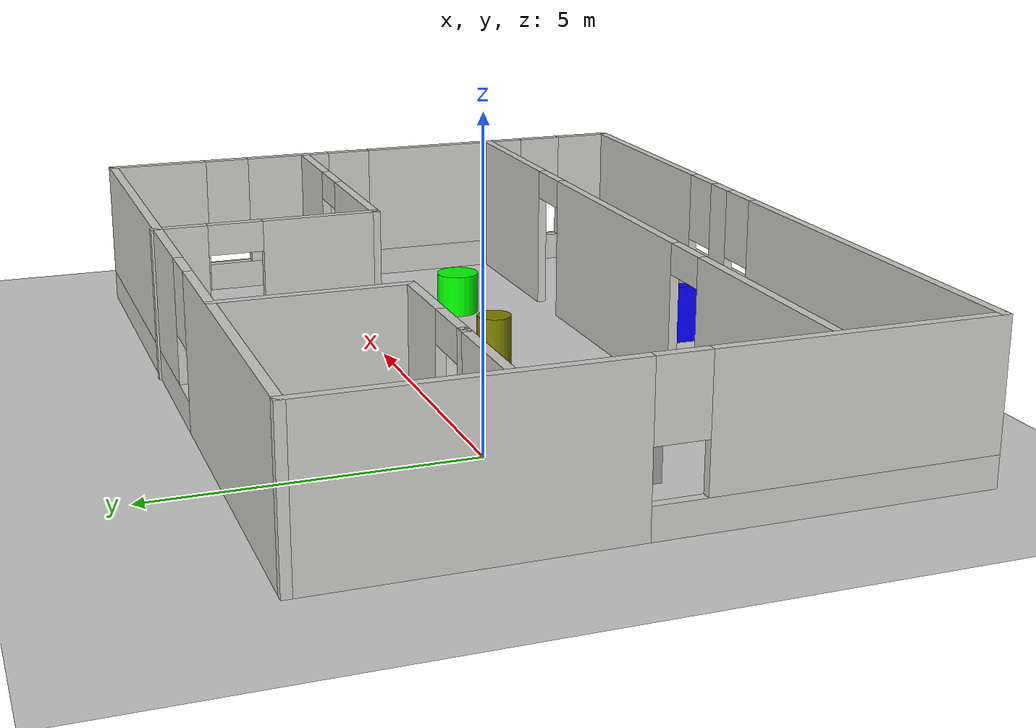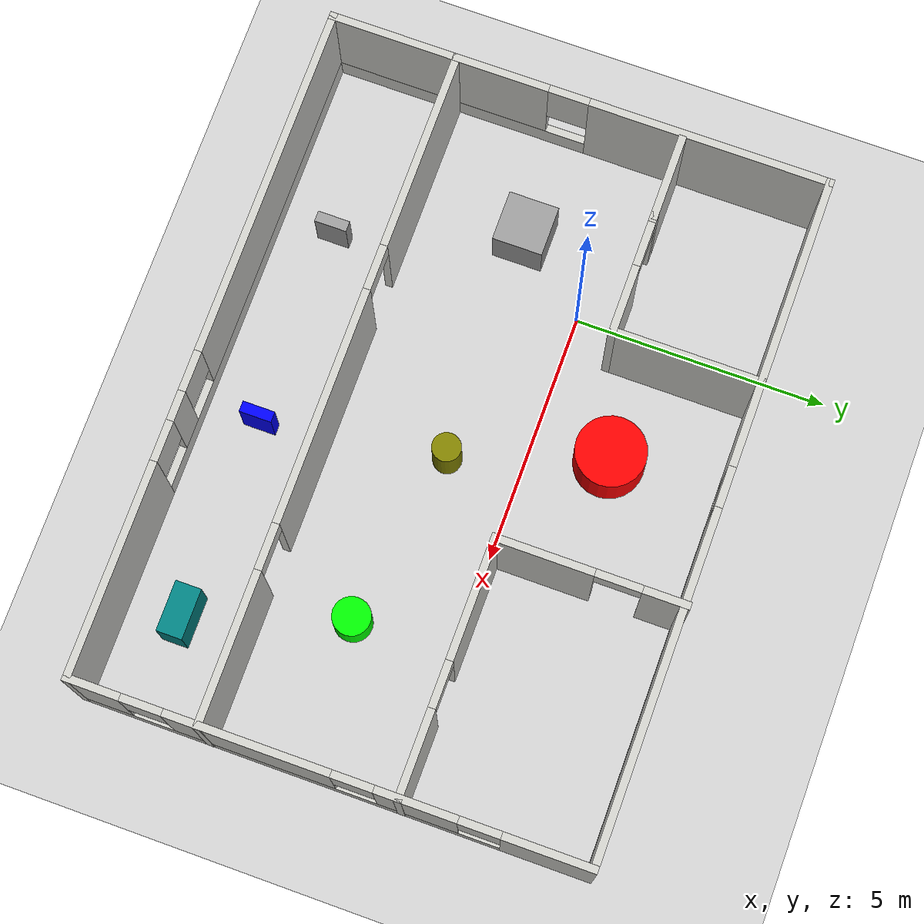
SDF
<sdf version="1.5">
 <world name="default">
  <light name="sun" type="directional">
   <pose>0 0 10 0 -0 0</pose>
   <diffuse>0.8 0.8 0.8 1</diffuse>
   <specular>0.2 0.2 0.2 1</specular>
   <attenuation>
    <range>1000</range>
    <constant>0.9</constant>
    <linear>0.01</linear>
    <quadratic>0.001</quadratic>
   </attenuation>
   <direction>-0.5 0.1 -0.9</direction>
  </light>
  <model name="ground_plane">
   <static>1</static>
   <link name="link">
    <collision name="collision">
     <geometry><plane><normal>0 0 1</normal><size>100 100</size></plane></geometry>
     <surface><friction><ode><mu>100</mu><mu2>50</mu2></ode></friction></surface>
    </collision>
    <visual name="visual">
     <cast_shadows>0</cast_shadows>
     <geometry><plane><normal>0 0 1</normal><size>100 100</size></plane></geometry>
     <material>
      <script><uri>file://media/materials/scripts/gazebo.material</uri><name>Gazebo/Grey</name></script>
     </material>
    </visual>
   </link>
  </model>
  <physics name="default_physics" default="0" type="ode">
   <max_step_size>0.001</max_step_size>
   <real_time_factor>1</real_time_factor>
   <real_time_update_rate>1000</real_time_update_rate>
   <gravity>0 0 -9.8</gravity>
   <magnetic_field>5.5645e-06 2.28758e-05 -4.23884e-05</magnetic_field>
  </physics>
  <scene><ambient>0.4 0.4 0.4 1</ambient><background>0.7 0.7 0.7 1</background><shadows>1</shadows></scene>
  <spherical_coordinates>
   <surface_model>EARTH_WGS84</surface_model>
   <latitude_deg>0</latitude_deg>
   <longitude_deg>0</longitude_deg>
   <elevation>0</elevation>
   <heading_deg>0</heading_deg>
  </spherical_coordinates>
  <model name="mr_simul">
   <pose>3.30411 -1.20956 0 0 -0 0</pose>
   <link name="Wall_0">
    <pose>-6.67729 -0.018087 0 0 0 -1.5708</pose>
    <visual name="Wall_0_Visual_0">
     <pose>-2.60269 0 1.25 0 -0 0</pose>
     <geometry><box><size>4.79462 0.15 2.5</size></box></geometry>
     <material>
      <script><uri>file://media/materials/scripts/gazebo.material</uri><name>Gazebo/CeilingTiled</name></script>
      <ambient>1 1 1 1</ambient>
     </material>
    </visual>
    <collision name="Wall_0_Collision_0">
     <geometry><box><size>4.79462 0.15 2.5</size></box></geometry>
     <pose>-2.60269 0 1.25 0 -0 0</pose>
    </collision>
    <visual name="Wall_0_Visual_1">
     <pose>2.39731 0 0.25 0 -0 0</pose>
     <geometry><box><size>5.20538 0.15 0.5</size></box></geometry>
     <material>
      <script><uri>file://media/materials/scripts/gazebo.material</uri><name>Gazebo/CeilingTiled</name></script>
      <ambient>1 1 1 1</ambient>
     </material>
    </visual>
    <collision name="Wall_0_Collision_1">
     <geometry><box><size>5.20538 0.15 0.5</size></box></geometry>
     <pose>2.39731 0 0.25 0 -0 0</pose>
    </collision>
    <visual name="Wall_0_Visual_2">
     <pose>2.79731 0 1.5 0 -0 0</pose>
     <geometry><box><size>4.40538 0.15 2</size></box></geometry>
     <material>
      <script><uri>file://media/materials/scripts/gazebo.material</uri><name>Gazebo/CeilingTiled</name></script>
      <ambient>1 1 1 1</ambient>
     </material>
    </visual>
    <collision name="Wall_0_Collision_2">
     <geometry><box><size>4.40538 0.15 2</size></box></geometry>
     <pose>2.79731 0 1.5 0 -0 0</pose>
    </collision>
    <visual name="Wall_0_Visual_3">
     <pose>0.19462 0 1.9 0 -0 0</pose>
     <geometry><box><size>0.8 0.15 1.2</size></box></geometry>
     <material>
      <script><uri>file://media/materials/scripts/gazebo.material</uri><name>Gazebo/CeilingTiled</name></script>
      <ambient>1 1 1 1</ambient>
     </material>
    </visual>
    <collision name="Wall_0_Collision_3">
     <geometry><box><size>0.8 0.15 1.2</size></box></geometry>
     <pose>0.19462 0 1.9 0 -0 0</pose>
    </collision>
   </link>
   <link name="Wall_12">
    <pose>1.74518 3.14309 0 0 0 -1.5708</pose>
    <visual name="Wall_12_Visual_0">
     <pose>-1.42397 0 1.25 0 -0 0</pose>
     <geometry><box><size>0.902054 0.15 2.5</size></box></geometry>
     <material>
      <script><uri>file://media/materials/scripts/gazebo.material</uri><name>Gazebo/CeilingTiled</name></script>
      <ambient>1 1 1 1</ambient>
     </material>
    </visual>
    <collision name="Wall_12_Collision_0">
     <geometry><box><size>0.902054 0.15 2.5</size></box></geometry>
     <pose>-1.42397 0 1.25 0 -0 0</pose>
    </collision>
    <visual name="Wall_12_Visual_1">
     <pose>0.901027 0 1.25 0 -0 0</pose>
     <geometry><box><size>1.94795 0.15 2.5</size></box></geometry>
     <material>
      <script><uri>file://media/materials/scripts/gazebo.material</uri><name>Gazebo/CeilingTiled</name></script>
      <ambient>1 1 1 1</ambient>
     </material>
    </visual>
    <collision name="Wall_12_Collision_1">
     <geometry><box><size>1.94795 0.15 2.5</size></box></geometry>
     <pose>0.901027 0 1.25 0 -0 0</pose>
    </collision>
    <visual name="Wall_12_Visual_2">
     <pose>-0.522946 0 2.25 0 -0 0</pose>
     <geometry><box><size>0.9 0.15 0.5</size></box></geometry>
     <material>
      <script><uri>file://media/materials/scripts/gazebo.material</uri><name>Gazebo/CeilingTiled</name></script>
      <ambient>1 1 1 1</ambient>
     </material>
    </visual>
    <collision name="Wall_12_Collision_2">
     <geometry><box><size>0.9 0.15 0.5</size></box></geometry>
     <pose>-0.522946 0 2.25 0 -0 0</pose>
    </collision>
   </link>
   <link name="Wall_14">
    <pose>4.20975 1.30681 0 0 -0 3.13631</pose>
    <visual name="Wall_14_Visual_0">
     <pose>-1.66628 0 1.25 0 -0 0</pose>
     <geometry><box><size>1.74713 0.15 2.5</size></box></geometry>
     <material>
      <script><uri>file://media/materials/scripts/gazebo.material</uri><name>Gazebo/CeilingTiled</name></script>
      <ambient>1 1 1 1</ambient>
     </material>
    </visual>
    <collision name="Wall_14_Collision_0">
     <geometry><box><size>1.74713 0.15 2.5</size></box></geometry>
     <pose>-1.66628 0 1.25 0 -0 0</pose>
    </collision>
    <visual name="Wall_14_Visual_1">
     <pose>1.32356 0 1.25 0 -0 0</pose>
     <geometry><box><size>2.43255 0.15 2.5</size></box></geometry>
     <material>
      <script><uri>file://media/materials/scripts/gazebo.material</uri><name>Gazebo/CeilingTiled</name></script>
      <ambient>1 1 1 1</ambient>
     </material>
    </visual>
    <collision name="Wall_14_Collision_1">
     <geometry><box><size>2.43255 0.15 2.5</size></box></geometry>
     <pose>1.32356 0 1.25 0 -0 0</pose>
    </collision>
    <visual name="Wall_14_Visual_2">
     <pose>-0.342713 0 2.25 0 -0 0</pose>
     <geometry><box><size>0.9 0.15 0.5</size></box></geometry>
     <material>
      <script><uri>file://media/materials/scripts/gazebo.material</uri><name>Gazebo/CeilingTiled</name></script>
      <ambient>1 1 1 1</ambient>
     </material>
    </visual>
    <collision name="Wall_14_Collision_2">
     <geometry><box><size>0.9 0.15 0.5</size></box></geometry>
     <pose>-0.342713 0 2.25 0 -0 0</pose>
    </collision>
   </link>
   <link name="Wall_16">
    <pose>0.002293 -2.45981 0 0 -0 0</pose>
    <visual name="Wall_16_Visual_0">
     <pose>-4.7439 0 1.25 0 -0 0</pose>
     <geometry><box><size>4.0122 0.15 2.5</size></box></geometry>
     <material>
      <script><uri>file://media/materials/scripts/gazebo.material</uri><name>Gazebo/CeilingTiled</name></script>
      <ambient>1 1 1 1</ambient>
     </material>
    </visual>
    <collision name="Wall_16_Collision_0">
     <geometry><box><size>4.0122 0.15 2.5</size></box></geometry>
     <pose>-4.7439 0 1.25 0 -0 0</pose>
    </collision>
    <visual name="Wall_16_Visual_1">
     <pose>0.494335 0 1.25 0 -0 0</pose>
     <geometry><box><size>4.66426 0.15 2.5</size></box></geometry>
     <material>
      <script><uri>file://media/materials/scripts/gazebo.material</uri><name>Gazebo/CeilingTiled</name></script>
      <ambient>1 1 1 1</ambient>
     </material>
    </visual>
    <collision name="Wall_16_Collision_1">
     <geometry><box><size>4.66426 0.15 2.5</size></box></geometry>
     <pose>0.494335 0 1.25 0 -0 0</pose>
    </collision>
    <visual name="Wall_16_Visual_2">
     <pose>5.23823 0 1.25 0 -0 0</pose>
     <geometry><box><size>3.02353 0.15 2.5</size></box></geometry>
     <material>
      <script><uri>file://media/materials/scripts/gazebo.material</uri><name>Gazebo/CeilingTiled</name></script>
      <ambient>1 1 1 1</ambient>
     </material>
    </visual>
    <collision name="Wall_16_Collision_2">
     <geometry><box><size>3.02353 0.15 2.5</size></box></geometry>
     <pose>5.23823 0 1.25 0 -0 0</pose>
    </collision>
    <visual name="Wall_16_Visual_3">
     <pose>-2.2878 0 2.25 0 -0 0</pose>
     <geometry><box><size>0.9 0.15 0.5</size></box></geometry>
     <material>
      <script><uri>file://media/materials/scripts/gazebo.material</uri><name>Gazebo/CeilingTiled</name></script>
      <ambient>1 1 1 1</ambient>
     </material>
    </visual>
    <collision name="Wall_16_Collision_3">
     <geometry><box><size>0.9 0.15 0.5</size></box></geometry>
     <pose>-2.2878 0 2.25 0 -0 0</pose>
    </collision>
    <visual name="Wall_16_Visual_4">
     <pose>3.27646 0 2.25 0 -0 0</pose>
     <geometry><box><size>0.9 0.15 0.5</size></box></geometry>
     <material>
      <script><uri>file://media/materials/scripts/gazebo.material</uri><name>Gazebo/CeilingTiled</name></script>
      <ambient>1 1 1 1</ambient>
     </material>
    </visual>
    <collision name="Wall_16_Collision_4">
     <geometry><box><size>0.9 0.15 0.5</size></box></geometry>
     <pose>3.27646 0 2.25 0 -0 0</pose>
    </collision>
   </link>
   <link name="Wall_18">
    <collision name="Wall_18_Collision">
     <geometry><box><size>1.75 0.15 2.5</size></box></geometry>
     <pose>0 0 1.25 0 -0 0</pose>
    </collision>
    <visual name="Wall_18_Visual">
     <pose>0 0 1.25 0 -0 0</pose>
     <geometry><box><size>1.75 0.15 2.5</size></box></geometry>
     <material>
      <script><uri>file://media/materials/scripts/gazebo.material</uri><name>Gazebo/CeilingTiled</name></script>
      <ambient>1 1 1 1</ambient>
     </material>
    </visual>
    <pose>-5.75654 2.04702 0 0 -0 3.14159</pose>
   </link>
   <link name="Wall_2">
    <pose>-0.002292 4.90691 0 0 -0 0</pose>
    <visual name="Wall_2_Visual_0">
     <pose>-3.83717 0 1.25 0 -0 0</pose>
     <geometry><box><size>5.82566 0.15 2.5</size></box></geometry>
     <material>
      <script><uri>file://media/materials/scripts/gazebo.material</uri><name>Gazebo/CeilingTiled</name></script>
      <ambient>1 1 1 1</ambient>
     </material>
    </visual>
    <collision name="Wall_2_Collision_0">
     <geometry><box><size>5.82566 0.15 2.5</size></box></geometry>
     <pose>-3.83717 0 1.25 0 -0 0</pose>
    </collision>
    <visual name="Wall_2_Visual_1">
     <pose>2.91283 0 0.25 0 -0 0</pose>
     <geometry><box><size>7.67434 0.15 0.5</size></box></geometry>
     <material>
      <script><uri>file://media/materials/scripts/gazebo.material</uri><name>Gazebo/CeilingTiled</name></script>
      <ambient>1 1 1 1</ambient>
     </material>
    </visual>
    <collision name="Wall_2_Collision_1">
     <geometry><box><size>7.67434 0.15 0.5</size></box></geometry>
     <pose>2.91283 0 0.25 0 -0 0</pose>
    </collision>
    <visual name="Wall_2_Visual_2">
     <pose>3.31283 0 1.5 0 -0 0</pose>
     <geometry><box><size>6.87434 0.15 2</size></box></geometry>
     <material>
      <script><uri>file://media/materials/scripts/gazebo.material</uri><name>Gazebo/CeilingTiled</name></script>
      <ambient>1 1 1 1</ambient>
     </material>
    </visual>
    <collision name="Wall_2_Collision_2">
     <geometry><box><size>6.87434 0.15 2</size></box></geometry>
     <pose>3.31283 0 1.5 0 -0 0</pose>
    </collision>
    <visual name="Wall_2_Visual_3">
     <pose>-0.524345 0 1.9 0 -0 0</pose>
     <geometry><box><size>0.8 0.15 1.2</size></box></geometry>
     <material>
      <script><uri>file://media/materials/scripts/gazebo.material</uri><name>Gazebo/CeilingTiled</name></script>
      <ambient>1 1 1 1</ambient>
     </material>
    </visual>
    <collision name="Wall_2_Collision_3">
     <geometry><box><size>0.8 0.15 1.2</size></box></geometry>
     <pose>-0.524345 0 1.9 0 -0 0</pose>
    </collision>
   </link>
   <link name="Wall_3">
    <pose>6.67271 -0.018087 0 0 0 -1.5708</pose>
    <visual name="Wall_3_Visual_0">
     <pose>-4.11122 0 1.25 0 -0 0</pose>
     <geometry><box><size>1.77755 0.15 2.5</size></box></geometry>
     <material>
      <script><uri>file://media/materials/scripts/gazebo.material</uri><name>Gazebo/CeilingTiled</name></script>
      <ambient>1 1 1 1</ambient>
     </material>
    </visual>
    <collision name="Wall_3_Collision_0">
     <geometry><box><size>1.77755 0.15 2.5</size></box></geometry>
     <pose>-4.11122 0 1.25 0 -0 0</pose>
    </collision>
    <visual name="Wall_3_Visual_1">
     <pose>0.888778 0 0.25 0 -0 0</pose>
     <geometry><box><size>8.22245 0.15 0.5</size></box></geometry>
     <material>
      <script><uri>file://media/materials/scripts/gazebo.material</uri><name>Gazebo/CeilingTiled</name></script>
      <ambient>1 1 1 1</ambient>
     </material>
    </visual>
    <collision name="Wall_3_Collision_1">
     <geometry><box><size>8.22245 0.15 0.5</size></box></geometry>
     <pose>0.888778 0 0.25 0 -0 0</pose>
    </collision>
    <visual name="Wall_3_Visual_2">
     <pose>-1.63726 0 1.5 0 -0 0</pose>
     <geometry><box><size>1.57036 0.15 2</size></box></geometry>
     <material>
      <script><uri>file://media/materials/scripts/gazebo.material</uri><name>Gazebo/CeilingTiled</name></script>
      <ambient>1 1 1 1</ambient>
     </material>
    </visual>
    <collision name="Wall_3_Collision_2">
     <geometry><box><size>1.57036 0.15 2</size></box></geometry>
     <pose>-1.63726 0 1.5 0 -0 0</pose>
    </collision>
    <visual name="Wall_3_Visual_3">
     <pose>1.52985 0 1.5 0 -0 0</pose>
     <geometry><box><size>3.16386 0.15 2</size></box></geometry>
     <material>
      <script><uri>file://media/materials/scripts/gazebo.material</uri><name>Gazebo/CeilingTiled</name></script>
      <ambient>1 1 1 1</ambient>
     </material>
    </visual>
    <collision name="Wall_3_Collision_3">
     <geometry><box><size>3.16386 0.15 2</size></box></geometry>
     <pose>1.52985 0 1.5 0 -0 0</pose>
    </collision>
    <visual name="Wall_3_Visual_4">
     <pose>4.45589 0 1.5 0 -0 0</pose>
     <geometry><box><size>1.08822 0.15 2</size></box></geometry>
     <material>
      <script><uri>file://media/materials/scripts/gazebo.material</uri><name>Gazebo/CeilingTiled</name></script>
      <ambient>1 1 1 1</ambient>
     </material>
    </visual>
    <collision name="Wall_3_Collision_4">
     <geometry><box><size>1.08822 0.15 2</size></box></geometry>
     <pose>4.45589 0 1.5 0 -0 0</pose>
    </collision>
    <visual name="Wall_3_Visual_5">
     <pose>-2.82245 0 1.9 0 -0 0</pose>
     <geometry><box><size>0.8 0.15 1.2</size></box></geometry>
     <material>
      <script><uri>file://media/materials/scripts/gazebo.material</uri><name>Gazebo/CeilingTiled</name></script>
      <ambient>1 1 1 1</ambient>
     </material>
    </visual>
    <collision name="Wall_3_Collision_5">
     <geometry><box><size>0.8 0.15 1.2</size></box></geometry>
     <pose>-2.82245 0 1.9 0 -0 0</pose>
    </collision>
    <visual name="Wall_3_Visual_6">
     <pose>-0.452083 0 1.9 0 -0 0</pose>
     <geometry><box><size>0.8 0.15 1.2</size></box></geometry>
     <material>
      <script><uri>file://media/materials/scripts/gazebo.material</uri><name>Gazebo/CeilingTiled</name></script>
      <ambient>1 1 1 1</ambient>
     </material>
    </visual>
    <collision name="Wall_3_Collision_6">
     <geometry><box><size>0.8 0.15 1.2</size></box></geometry>
     <pose>-0.452083 0 1.9 0 -0 0</pose>
    </collision>
    <visual name="Wall_3_Visual_7">
     <pose>3.51178 0 1.9 0 -0 0</pose>
     <geometry><box><size>0.8 0.15 1.2</size></box></geometry>
     <material>
      <script><uri>file://media/materials/scripts/gazebo.material</uri><name>Gazebo/CeilingTiled</name></script>
      <ambient>1 1 1 1</ambient>
     </material>
    </visual>
    <collision name="Wall_3_Collision_7">
     <geometry><box><size>0.8 0.15 1.2</size></box></geometry>
     <pose>3.51178 0 1.9 0 -0 0</pose>
    </collision>
   </link>
   <link name="Wall_4">
    <pose>-0.002292 -4.94309 0 0 -0 3.14159</pose>
    <visual name="Wall_4_Visual_0">
     <pose>-4.627 0 1.25 0 -0 0</pose>
     <geometry><box><size>4.24601 0.15 2.5</size></box></geometry>
     <material>
      <script><uri>file://media/materials/scripts/gazebo.material</uri><name>Gazebo/CeilingTiled</name></script>
      <ambient>1 1 1 1</ambient>
     </material>
    </visual>
    <collision name="Wall_4_Collision_0">
     <geometry><box><size>4.24601 0.15 2.5</size></box></geometry>
     <pose>-4.627 0 1.25 0 -0 0</pose>
    </collision>
    <visual name="Wall_4_Visual_1">
     <pose>2.123 0 0.25 0 -0 0</pose>
     <geometry><box><size>9.25399 0.15 0.5</size></box></geometry>
     <material>
      <script><uri>file://media/materials/scripts/gazebo.material</uri><name>Gazebo/CeilingTiled</name></script>
      <ambient>1 1 1 1</ambient>
     </material>
    </visual>
    <collision name="Wall_4_Collision_1">
     <geometry><box><size>9.25399 0.15 0.5</size></box></geometry>
     <pose>2.123 0 0.25 0 -0 0</pose>
    </collision>
    <visual name="Wall_4_Visual_2">
     <pose>-1.40846 0 1.5 0 -0 0</pose>
     <geometry><box><size>0.591065 0.15 2</size></box></geometry>
     <material>
      <script><uri>file://media/materials/scripts/gazebo.material</uri><name>Gazebo/CeilingTiled</name></script>
      <ambient>1 1 1 1</ambient>
     </material>
    </visual>
    <collision name="Wall_4_Collision_2">
     <geometry><box><size>0.591065 0.15 2</size></box></geometry>
     <pose>-1.40846 0 1.5 0 -0 0</pose>
    </collision>
    <visual name="Wall_4_Visual_3">
     <pose>3.21854 0 1.5 0 -0 0</pose>
     <geometry><box><size>7.06293 0.15 2</size></box></geometry>
     <material>
      <script><uri>file://media/materials/scripts/gazebo.material</uri><name>Gazebo/CeilingTiled</name></script>
      <ambient>1 1 1 1</ambient>
     </material>
    </visual>
    <collision name="Wall_4_Collision_3">
     <geometry><box><size>7.06293 0.15 2</size></box></geometry>
     <pose>3.21854 0 1.5 0 -0 0</pose>
    </collision>
    <visual name="Wall_4_Visual_4">
     <pose>-2.10399 0 1.9 0 -0 0</pose>
     <geometry><box><size>0.8 0.15 1.2</size></box></geometry>
     <material>
      <script><uri>file://media/materials/scripts/gazebo.material</uri><name>Gazebo/CeilingTiled</name></script>
      <ambient>1 1 1 1</ambient>
     </material>
    </visual>
    <collision name="Wall_4_Collision_4">
     <geometry><box><size>0.8 0.15 1.2</size></box></geometry>
     <pose>-2.10399 0 1.9 0 -0 0</pose>
    </collision>
    <visual name="Wall_4_Visual_5">
     <pose>-0.712929 0 1.9 0 -0 0</pose>
     <geometry><box><size>0.8 0.15 1.2</size></box></geometry>
     <material>
      <script><uri>file://media/materials/scripts/gazebo.material</uri><name>Gazebo/CeilingTiled</name></script>
      <ambient>1 1 1 1</ambient>
     </material>
    </visual>
    <collision name="Wall_4_Collision_5">
     <geometry><box><size>0.8 0.15 1.2</size></box></geometry>
     <pose>-0.712929 0 1.9 0 -0 0</pose>
    </collision>
   </link>
   <link name="Wall_6">
    <collision name="Wall_6_Collision">
     <geometry><box><size>3 0.15 2.5</size></box></geometry>
     <pose>0 0 1.25 0 -0 0</pose>
    </collision>
    <visual name="Wall_6_Visual">
     <pose>0 0 1.25 0 -0 0</pose>
     <geometry><box><size>3 0.15 2.5</size></box></geometry>
     <material>
      <script><uri>file://media/materials/scripts/gazebo.material</uri><name>Gazebo/CeilingTiled</name></script>
      <ambient>1 1 1 1</ambient>
     </material>
    </visual>
    <pose>-2.60654 3.47202 0 0 0 -1.5708</pose>
   </link>
   <link name="Wall_7">
    <pose>-3.78154 2.04702 0 0 -0 3.14159</pose>
    <visual name="Wall_7_Visual_0">
     <pose>-0.549322 0 1.25 0 -0 0</pose>
     <geometry><box><size>1.40136 0.15 2.5</size></box></geometry>
     <material>
      <script><uri>file://media/materials/scripts/gazebo.material</uri><name>Gazebo/CeilingTiled</name></script>
      <ambient>1 1 1 1</ambient>
     </material>
    </visual>
    <collision name="Wall_7_Collision_0">
     <geometry><box><size>1.40136 0.15 2.5</size></box></geometry>
     <pose>-0.549322 0 1.25 0 -0 0</pose>
    </collision>
    <visual name="Wall_7_Visual_1">
     <pose>1.15068 0 1.25 0 -0 0</pose>
     <geometry><box><size>0.198644 0.15 2.5</size></box></geometry>
     <material>
      <script><uri>file://media/materials/scripts/gazebo.material</uri><name>Gazebo/CeilingTiled</name></script>
      <ambient>1 1 1 1</ambient>
     </material>
    </visual>
    <collision name="Wall_7_Collision_1">
     <geometry><box><size>0.198644 0.15 2.5</size></box></geometry>
     <pose>1.15068 0 1.25 0 -0 0</pose>
    </collision>
    <visual name="Wall_7_Visual_2">
     <pose>0.601356 0 2.25 0 -0 0</pose>
     <geometry><box><size>0.9 0.15 0.5</size></box></geometry>
     <material>
      <script><uri>file://media/materials/scripts/gazebo.material</uri><name>Gazebo/CeilingTiled</name></script>
      <ambient>1 1 1 1</ambient>
     </material>
    </visual>
    <collision name="Wall_7_Collision_2">
     <geometry><box><size>0.9 0.15 0.5</size></box></geometry>
     <pose>0.601356 0 2.25 0 -0 0</pose>
    </collision>
   </link>
   <static>1</static>
  </model>
  <model name="unit_box_1">
   <pose>-1.2131 -1.5 0.5 0 -0 0</pose>
   <static>true</static>
   <link name="link">
    <inertial>
     <mass>1</mass>
     <inertia><ixx>1</ixx><ixy>0</ixy><ixz>0</ixz><iyy>1</iyy><iyz>0</iyz><izz>1</izz></inertia>
    </inertial>
    <collision name="collision"><geometry><box><size>1 1 1</size></box></geometry></collision>
    <visual name="visual">
     <geometry><box><size>1 1 1</size></box></geometry>
     <material>
      <script><uri>file://media/materials/scripts/gazebo.material</uri><name>Gazebo/Grey</name></script>
     </material>
    </visual>
   </link>
  </model>
  <model name="unit_cylinder_2">
   <pose>2.47995 1.50144 0.499992 -1e-06 0 0</pose>
   <static>true</static>
   <link name="link">
    <inertial>
     <mass>1</mass>
     <inertia><ixx>1</ixx><ixy>0</ixy><ixz>0</ixz><iyy>1</iyy><iyz>0</iyz><izz>1</izz></inertia>
    </inertial>
    <collision name="collision">
     <geometry><cylinder><radius>0.689963</radius><length>1</length></cylinder></geometry>
    </collision>
    <visual name="visual">
     <geometry><cylinder><radius>0.689963</radius><length>1</length></cylinder></geometry>
     <material>
      <script><uri>file://media/materials/scripts/gazebo.material</uri><name>Gazebo/Grey</name></script>
      <ambient>1 0 0 1</ambient>
      <diffuse>1 0 0 1</diffuse>
      <specular>0.1 0.1 0.1 1</specular>
      <emissive>0 0 0 0</emissive>
     </material>
    </visual>
   </link>
  </model>
  <model name="unit_cylinder_3">
   <pose>3.44399 -1.41862 0.499999 -0 -0 -0</pose>
   <static>true</static>
   <link name="link">
    <inertial>
     <mass>1</mass>
     <inertia><ixx>1</ixx><ixy>0</ixy><ixz>0</ixz><iyy>1</iyy><iyz>0</iyz><izz>1</izz></inertia>
    </inertial>
    <collision name="collision">
     <geometry><cylinder><radius>0.284308</radius><length>1</length></cylinder></geometry>
    </collision>
    <visual name="visual">
     <geometry><cylinder><radius>0.284308</radius><length>1</length></cylinder></geometry>
     <material>
      <script><uri>file://media/materials/scripts/gazebo.material</uri><name>Gazebo/Grey</name></script>
      <ambient>0.5 0.5 0 1</ambient>
      <diffuse>0.5 0.5 0 1</diffuse>
      <specular>0.1 0.1 0.1 1</specular>
      <emissive>0 0 0 0</emissive>
     </material>
    </visual>
   </link>
  </model>
  <model name="unit_cylinder_4">
   <pose>7 -2 0.364936 0 -0 0</pose>
   <static>true</static>
   <link name="link">
    <inertial>
     <mass>1</mass>
     <inertia><ixx>1</ixx><ixy>0</ixy><ixz>0</ixz><iyy>1</iyy><iyz>0</iyz><izz>1</izz></inertia>
    </inertial>
    <collision name="collision">
     <geometry><cylinder><radius>0.373984</radius><length>0.72989</length></cylinder></geometry>
    </collision>
    <visual name="visual">
     <geometry><cylinder><radius>0.373984</radius><length>0.72989</length></cylinder></geometry>
     <material>
      <script><uri>file://media/materials/scripts/gazebo.material</uri><name>Gazebo/Grey</name></script>
      <ambient>0 1 0 1</ambient>
      <diffuse>0 1 0 1</diffuse>
      <specular>0.1 0.1 0.1 1</specular>
      <emissive>0 0 0 0</emissive>
     </material>
    </visual>
   </link>
  </model>
  <model name="unit_box_2">
   <pose>4 -5 0.499998 -1e-06 -3.23117e-27 -8e-06</pose>
   <static>true</static>
   <link name="link">
    <inertial>
     <mass>1</mass>
     <inertia><ixx>1</ixx><ixy>0</ixy><ixz>0</ixz><iyy>1</iyy><iyz>0</iyz><izz>1</izz></inertia>
    </inertial>
    <collision name="collision"><geometry><box><size>0.212379 0.641325 1</size></box></geometry></collision>
    <visual name="visual">
     <geometry><box><size>0.212379 0.641325 1</size></box></geometry>
     <material>
      <script><uri>file://media/materials/scripts/gazebo.material</uri><name>Gazebo/Grey</name></script>
      <ambient>0 0 1 1</ambient>
      <diffuse>0 0 1 1</diffuse>
      <specular>0.1 0.1 0.1 1</specular>
      <emissive>0 0 0 0</emissive>
     </material>
    </visual>
   </link>
  </model>
  <model name="unit_box_2_clone">
   <pose>0 -5 0.499998 -1e-06 -8.07794e-28 -2e-06</pose>
   <static>true</static>
   <link name="link">
    <inertial>
     <mass>1</mass>
     <inertia><ixx>1</ixx><ixy>0</ixy><ixz>0</ixz><iyy>1</iyy><iyz>0</iyz><izz>1</izz></inertia>
    </inertial>
    <collision name="collision"><geometry><box><size>0.212379 0.641325 1</size></box></geometry></collision>
    <visual name="visual">
     <geometry><box><size>0.212379 0.641325 1</size></box></geometry>
     <material>
      <script><uri>file://media/materials/scripts/gazebo.material</uri><name>Gazebo/Grey</name></script>
      <ambient>0.5 0.5 0.5 1</ambient>
      <diffuse>0.5 0.5 0.5 1</diffuse>
      <specular>0.1 0.1 0.1 1</specular>
      <emissive>0 0 0 0</emissive>
     </material>
    </visual>
   </link>
  </model>
  <model name="unit_box_2_clone_0">
   <static>true</static>
   <pose>8 -5 0.499993 1.61559e-27 -2e-06 4e-06</pose>
   <link name="link">
    <inertial>
     <mass>1</mass>
     <inertia><ixx>1</ixx><ixy>0</ixy><ixz>0</ixz><iyy>1</iyy><iyz>0</iyz><izz>1</izz></inertia>
    </inertial>
    <collision name="collision"><geometry><box><size>0.212379 0.327732 1</size></box></geometry></collision>
    <visual name="visual">
     <geometry><box><size>1 0.511023 1</size></box></geometry>
     <material>
      <script><uri>file://media/materials/scripts/gazebo.material</uri><name>Gazebo/Grey</name></script>
      <ambient>0 0.5 0.5 1</ambient>
      <diffuse>0 0.5 0.5 1</diffuse>
      <specular>0.1 0.1 0.1 1</specular>
      <emissive>0 0 0 0</emissive>
     </material>
    </visual>
   </link>
  </model>
 </world>
</sdf>
